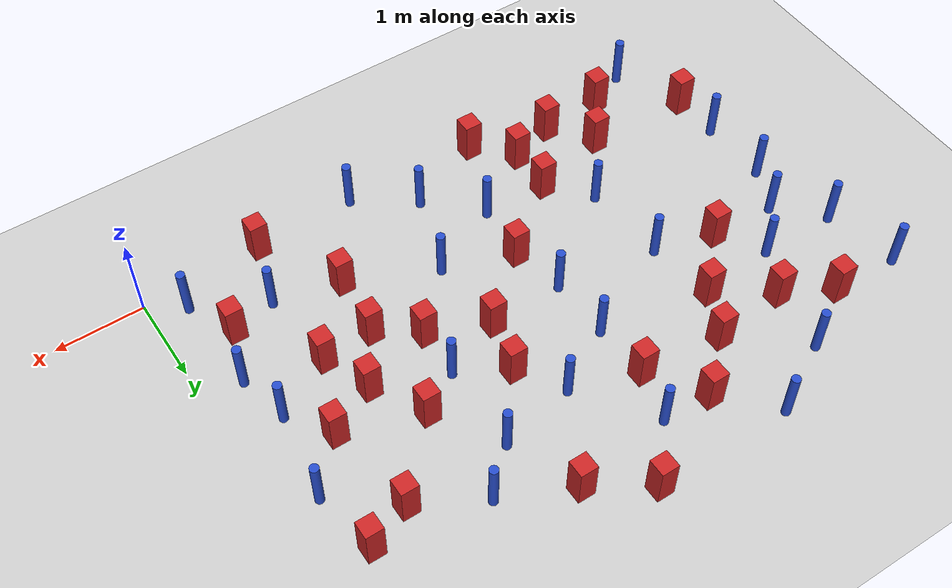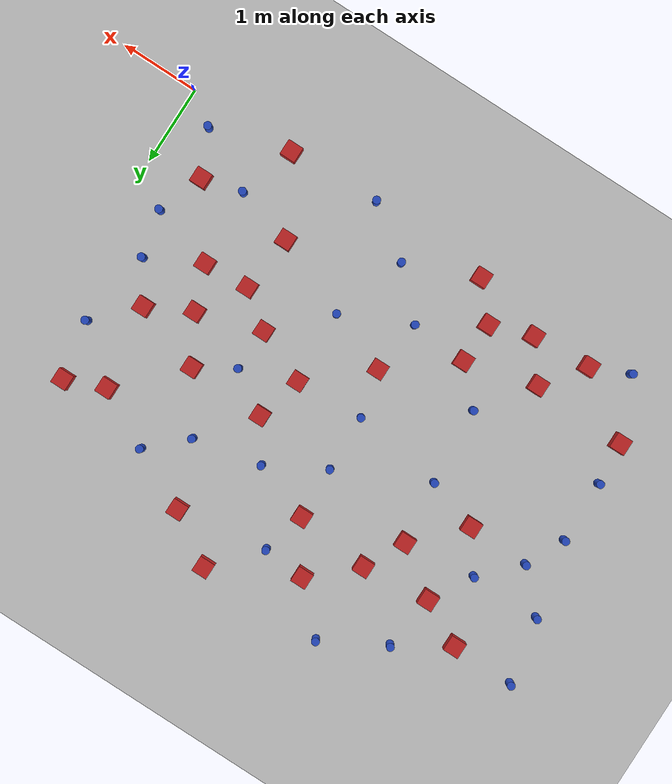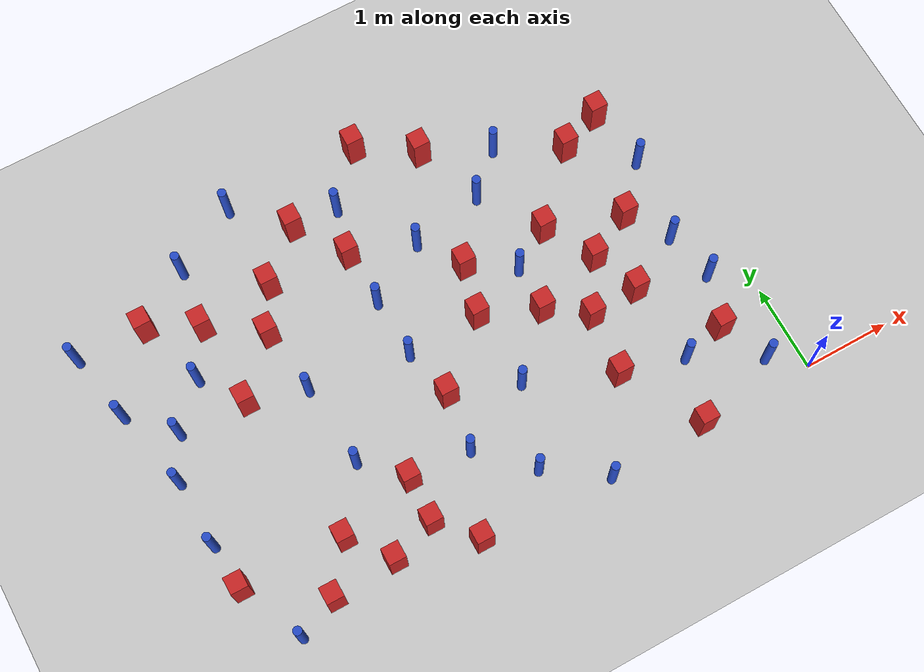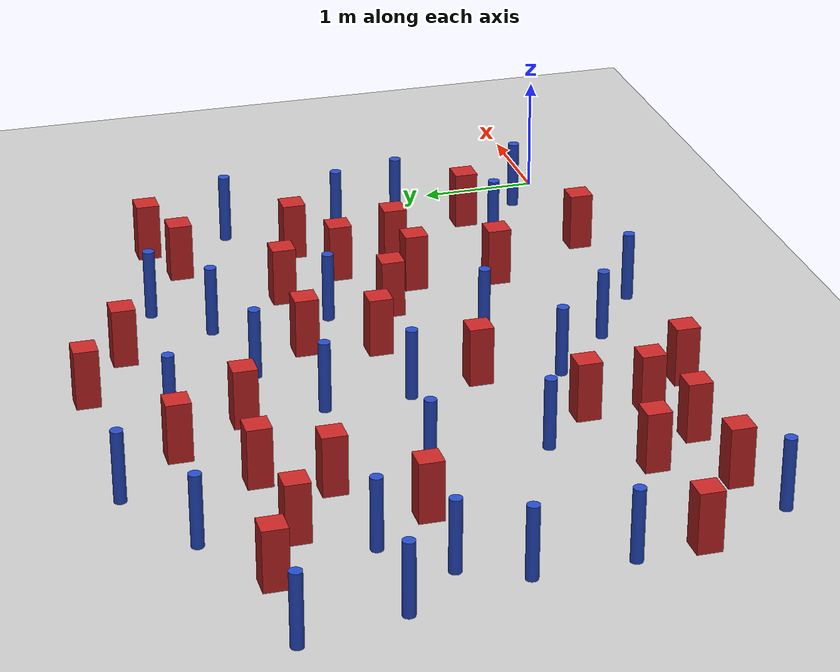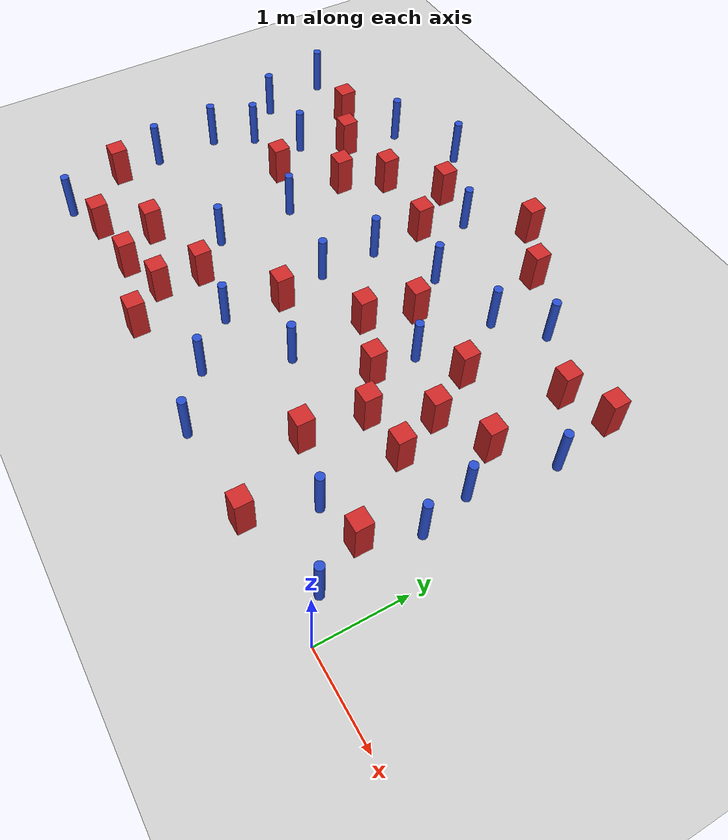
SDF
<sdf version="1.6">
 <world name="default">
  <model name="ground_plane">
   <static>1</static>
   <link name="link">
    <collision name="collision">
     <geometry><plane><normal>0 0 1</normal><size>100 100</size></plane></geometry>
     <surface><friction><ode><mu>100</mu><mu2>50</mu2></ode></friction></surface>
    </collision>
    <visual name="visual">
     <cast_shadows>0</cast_shadows>
     <geometry><plane><normal>0 0 1</normal><size>100 100</size></plane></geometry>
     <material>
      <ambient>1.0 1.0 1.0 1.0</ambient>
      <diffuse>0.8 0.8 0.8 1.0</diffuse>
      <specular>0.01 0.01 0.01 1.000000</specular>
     </material>
    </visual>
   </link>
  </model>
  <model name="square_post_obstacle1">
   <static>true</static>
   <pose>-6.51652858593 0.78683695775 -4.36207812815e-07 3.75137919937e-06 9.77721102514e-07 2.47381364184e-05</pose>
   <link name="link">
    <pose>0 0 0.25 0 -0 0</pose>
    <inertial>
     <mass>100</mass>
     <inertia>
      <ixx>0.166667</ixx>
      <ixy>0</ixy>
      <ixz>0</ixz>
      <iyy>0.166667</iyy>
      <iyz>0</iyz>
      <izz>0.166667</izz>
     </inertia>
    </inertial>
    <collision name="collision"><geometry><box><size>.2 .2 .5</size></box></geometry></collision>
    <visual name="visual">
     <geometry><box><size>.2 .2 .5</size></box></geometry>
     <material>
      <script><name>Gazebo/Red</name><uri>file://media/materials/scripts/gazebo.material</uri></script>
     </material>
    </visual>
   </link>
  </model>
  <model name="pole_obstacle7">
   <static>true</static>
   <pose>-3.71285936024 0.927176487157 -3.09024884793e-07 -7.19054271912e-07 -2.11315075162e-07 -1.93935509281e-07</pose>
   <link name="link">
    <pose>0 0 0.3 0 -0 0</pose>
    <inertial>
     <mass>1</mass>
     <inertia><ixx>0.145833</ixx><ixy>0</ixy><ixz>0</ixz><iyy>0.145833</iyy><iyz>0</iyz><izz>0.125</izz></inertia>
    </inertial>
    <collision name="collision">
     <geometry><cylinder><radius>0.05</radius><length>.6</length></cylinder></geometry>
    </collision>
    <visual name="visual">
     <geometry><cylinder><radius>0.05</radius><length>.6</length></cylinder></geometry>
     <material>
      <script><name>Gazebo/Blue</name><uri>file://media/materials/scripts/gazebo.material</uri></script>
     </material>
    </visual>
   </link>
  </model>
  <model name="square_post_obstacle9">
   <static>true</static>
   <pose>-1.23599823708 1.6640314914 -4.36207812815e-07 3.75137919937e-06 9.77721102514e-07 2.47381364184e-05</pose>
   <link name="link">
    <pose>0 0 0.25 0 -0 0</pose>
    <inertial>
     <mass>100</mass>
     <inertia>
      <ixx>0.166667</ixx>
      <ixy>0</ixy>
      <ixz>0</ixz>
      <iyy>0.166667</iyy>
      <iyz>0</iyz>
      <izz>0.166667</izz>
     </inertia>
    </inertial>
    <collision name="collision"><geometry><box><size>.2 .2 .5</size></box></geometry></collision>
    <visual name="visual">
     <geometry><box><size>.2 .2 .5</size></box></geometry>
     <material>
      <script><name>Gazebo/Red</name><uri>file://media/materials/scripts/gazebo.material</uri></script>
     </material>
    </visual>
   </link>
  </model>
  <model name="square_post_obstacle12">
   <static>true</static>
   <pose>-6.17374142803 3.86425965815 -4.36207812815e-07 3.75137919937e-06 9.77721102514e-07 2.47381364184e-05</pose>
   <link name="link">
    <pose>0 0 0.25 0 -0 0</pose>
    <inertial>
     <mass>100</mass>
     <inertia>
      <ixx>0.166667</ixx>
      <ixy>0</ixy>
      <ixz>0</ixz>
      <iyy>0.166667</iyy>
      <iyz>0</iyz>
      <izz>0.166667</izz>
     </inertia>
    </inertial>
    <collision name="collision"><geometry><box><size>.2 .2 .5</size></box></geometry></collision>
    <visual name="visual">
     <geometry><box><size>.2 .2 .5</size></box></geometry>
     <material>
      <script><name>Gazebo/Red</name><uri>file://media/materials/scripts/gazebo.material</uri></script>
     </material>
    </visual>
   </link>
  </model>
  <model name="square_post_obstacle16">
   <static>true</static>
   <pose>-1.88368987342 0.911929854532 -4.36207812815e-07 3.75137919937e-06 9.77721102514e-07 2.47381364184e-05</pose>
   <link name="link">
    <pose>0 0 0.25 0 -0 0</pose>
    <inertial>
     <mass>100</mass>
     <inertia>
      <ixx>0.166667</ixx>
      <ixy>0</ixy>
      <ixz>0</ixz>
      <iyy>0.166667</iyy>
      <iyz>0</iyz>
      <izz>0.166667</izz>
     </inertia>
    </inertial>
    <collision name="collision"><geometry><box><size>.2 .2 .5</size></box></geometry></collision>
    <visual name="visual">
     <geometry><box><size>.2 .2 .5</size></box></geometry>
     <material>
      <script><name>Gazebo/Red</name><uri>file://media/materials/scripts/gazebo.material</uri></script>
     </material>
    </visual>
   </link>
  </model>
  <model name="square_post_obstacle21">
   <static>true</static>
   <pose>-3.63298602497 1.60475651946 -4.36207812815e-07 3.75137919937e-06 9.77721102514e-07 2.47381364184e-05</pose>
   <link name="link">
    <pose>0 0 0.25 0 -0 0</pose>
    <inertial>
     <mass>100</mass>
     <inertia>
      <ixx>0.166667</ixx>
      <ixy>0</ixy>
      <ixz>0</ixz>
      <iyy>0.166667</iyy>
      <iyz>0</iyz>
      <izz>0.166667</izz>
     </inertia>
    </inertial>
    <collision name="collision"><geometry><box><size>.2 .2 .5</size></box></geometry></collision>
    <visual name="visual">
     <geometry><box><size>.2 .2 .5</size></box></geometry>
     <material>
      <script><name>Gazebo/Red</name><uri>file://media/materials/scripts/gazebo.material</uri></script>
     </material>
    </visual>
   </link>
  </model>
  <model name="pole_obstacle15">
   <static>true</static>
   <pose>-4.91971607165 2.37123961968 -3.09024884793e-07 -7.19054271912e-07 -2.11315075144e-07 -1.93935509269e-07</pose>
   <link name="link">
    <pose>0 0 0.3 0 -0 0</pose>
    <inertial>
     <mass>1</mass>
     <inertia><ixx>0.145833</ixx><ixy>0</ixy><ixz>0</ixz><iyy>0.145833</iyy><iyz>0</iyz><izz>0.125</izz></inertia>
    </inertial>
    <collision name="collision">
     <geometry><cylinder><radius>0.05</radius><length>.6</length></cylinder></geometry>
    </collision>
    <visual name="visual">
     <geometry><cylinder><radius>0.05</radius><length>.6</length></cylinder></geometry>
     <material>
      <script><name>Gazebo/Blue</name><uri>file://media/materials/scripts/gazebo.material</uri></script>
     </material>
    </visual>
   </link>
  </model>
  <model name="square_post_obstacle30">
   <static>true</static>
   <pose>-4.21722687722 4.15787395715 -4.36207812815e-07 3.75137919937e-06 9.77721102514e-07 2.47381364184e-05</pose>
   <link name="link">
    <pose>0 0 0.25 0 -0 0</pose>
    <inertial>
     <mass>100</mass>
     <inertia>
      <ixx>0.166667</ixx>
      <ixy>0</ixy>
      <ixz>0</ixz>
      <iyy>0.166667</iyy>
      <iyz>0</iyz>
      <izz>0.166667</izz>
     </inertia>
    </inertial>
    <collision name="collision"><geometry><box><size>.2 .2 .5</size></box></geometry></collision>
    <visual name="visual">
     <geometry><box><size>.2 .2 .5</size></box></geometry>
     <material>
      <script><name>Gazebo/Red</name><uri>file://media/materials/scripts/gazebo.material</uri></script>
     </material>
    </visual>
   </link>
  </model>
  <model name="pole_obstacle21">
   <static>true</static>
   <pose>-3.09052660164 3.30890729147 -3.09024884793e-07 -7.19054271912e-07 -2.11315075144e-07 -1.93935509271e-07</pose>
   <link name="link">
    <pose>0 0 0.3 0 -0 0</pose>
    <inertial>
     <mass>1</mass>
     <inertia><ixx>0.145833</ixx><ixy>0</ixy><ixz>0</ixz><iyy>0.145833</iyy><iyz>0</iyz><izz>0.125</izz></inertia>
    </inertial>
    <collision name="collision">
     <geometry><cylinder><radius>0.05</radius><length>.6</length></cylinder></geometry>
    </collision>
    <visual name="visual">
     <geometry><cylinder><radius>0.05</radius><length>.6</length></cylinder></geometry>
     <material>
      <script><name>Gazebo/Blue</name><uri>file://media/materials/scripts/gazebo.material</uri></script>
     </material>
    </visual>
   </link>
  </model>
  <model name="square_post_obstacle32">
   <static>true</static>
   <pose>-2.75928012012 2.82162191856 -4.36207812815e-07 3.75137919937e-06 9.77721102514e-07 2.47381364184e-05</pose>
   <link name="link">
    <pose>0 0 0.25 0 -0 0</pose>
    <inertial>
     <mass>100</mass>
     <inertia>
      <ixx>0.166667</ixx>
      <ixy>0</ixy>
      <ixz>0</ixz>
      <iyy>0.166667</iyy>
      <iyz>0</iyz>
      <izz>0.166667</izz>
     </inertia>
    </inertial>
    <collision name="collision"><geometry><box><size>.2 .2 .5</size></box></geometry></collision>
    <visual name="visual">
     <geometry><box><size>.2 .2 .5</size></box></geometry>
     <material>
      <script><name>Gazebo/Red</name><uri>file://media/materials/scripts/gazebo.material</uri></script>
     </material>
    </visual>
   </link>
  </model>
  <model name="square_post_obstacle34">
   <static>true</static>
   <pose>-0.896329567246 2.48800933883 -4.36207812815e-07 3.75137919937e-06 9.77721102514e-07 2.47381364184e-05</pose>
   <link name="link">
    <pose>0 0 0.25 0 -0 0</pose>
    <inertial>
     <mass>100</mass>
     <inertia>
      <ixx>0.166667</ixx>
      <ixy>0</ixy>
      <ixz>0</ixz>
      <iyy>0.166667</iyy>
      <iyz>0</iyz>
      <izz>0.166667</izz>
     </inertia>
    </inertial>
    <collision name="collision"><geometry><box><size>.2 .2 .5</size></box></geometry></collision>
    <visual name="visual">
     <geometry><box><size>.2 .2 .5</size></box></geometry>
     <material>
      <script><name>Gazebo/Red</name><uri>file://media/materials/scripts/gazebo.material</uri></script>
     </material>
    </visual>
   </link>
  </model>
  <model name="pole_obstacle39">
   <static>true</static>
   <pose>-2.86524490861 1.32082966314 -3.09024884793e-07 -7.19054271912e-07 -2.11315075122e-07 -1.93935509259e-07</pose>
   <link name="link">
    <pose>0 0 0.3 0 -0 0</pose>
    <inertial>
     <mass>1</mass>
     <inertia><ixx>0.145833</ixx><ixy>0</ixy><ixz>0</ixz><iyy>0.145833</iyy><iyz>0</iyz><izz>0.125</izz></inertia>
    </inertial>
    <collision name="collision">
     <geometry><cylinder><radius>0.05</radius><length>.6</length></cylinder></geometry>
    </collision>
    <visual name="visual">
     <geometry><cylinder><radius>0.05</radius><length>.6</length></cylinder></geometry>
     <material>
      <script><name>Gazebo/Blue</name><uri>file://media/materials/scripts/gazebo.material</uri></script>
     </material>
    </visual>
   </link>
  </model>
  <model name="pole_obstacle40">
   <static>true</static>
   <pose>-0.38835133906 0.286060302356 -3.09024884793e-07 -7.19054271912e-07 -2.11315075139e-07 -1.93935509268e-07</pose>
   <link name="link">
    <pose>0 0 0.3 0 -0 0</pose>
    <inertial>
     <mass>1</mass>
     <inertia><ixx>0.145833</ixx><ixy>0</ixy><ixz>0</ixz><iyy>0.145833</iyy><iyz>0</iyz><izz>0.125</izz></inertia>
    </inertial>
    <collision name="collision">
     <geometry><cylinder><radius>0.05</radius><length>.6</length></cylinder></geometry>
    </collision>
    <visual name="visual">
     <geometry><cylinder><radius>0.05</radius><length>.6</length></cylinder></geometry>
     <material>
      <script><name>Gazebo/Blue</name><uri>file://media/materials/scripts/gazebo.material</uri></script>
     </material>
    </visual>
   </link>
  </model>
  <model name="square_post_obstacle40">
   <static>true</static>
   <pose>-5.01593971081 3.15319301197 -4.36207812815e-07 3.75137919937e-06 9.77721102514e-07 2.47381364184e-05</pose>
   <link name="link">
    <pose>0 0 0.25 0 -0 0</pose>
    <inertial>
     <mass>100</mass>
     <inertia>
      <ixx>0.166667</ixx>
      <ixy>0</ixy>
      <ixz>0</ixz>
      <iyy>0.166667</iyy>
      <iyz>0</iyz>
      <izz>0.166667</izz>
     </inertia>
    </inertial>
    <collision name="collision"><geometry><box><size>.2 .2 .5</size></box></geometry></collision>
    <visual name="visual">
     <geometry><box><size>.2 .2 .5</size></box></geometry>
     <material>
      <script><name>Gazebo/Red</name><uri>file://media/materials/scripts/gazebo.material</uri></script>
     </material>
    </visual>
   </link>
  </model>
  <model name="square_post_obstacle41">
   <static>true</static>
   <pose>-1.37461915622 -0.00380150282705 -4.36207812815e-07 3.75137919937e-06 9.77721102514e-07 2.47381364184e-05</pose>
   <link name="link">
    <pose>0 0 0.25 0 -0 0</pose>
    <inertial>
     <mass>100</mass>
     <inertia>
      <ixx>0.166667</ixx>
      <ixy>0</ixy>
      <ixz>0</ixz>
      <iyy>0.166667</iyy>
      <iyz>0</iyz>
      <izz>0.166667</izz>
     </inertia>
    </inertial>
    <collision name="collision"><geometry><box><size>.2 .2 .5</size></box></geometry></collision>
    <visual name="visual">
     <geometry><box><size>.2 .2 .5</size></box></geometry>
     <material>
      <script><name>Gazebo/Red</name><uri>file://media/materials/scripts/gazebo.material</uri></script>
     </material>
    </visual>
   </link>
  </model>
  <model name="square_post_obstacle44">
   <static>true</static>
   <pose>-2.54183168225 4.28383851326 -4.36207812815e-07 3.75137919937e-06 9.77721102514e-07 2.47381364184e-05</pose>
   <link name="link">
    <pose>0 0 0.25 0 -0 0</pose>
    <inertial>
     <mass>100</mass>
     <inertia>
      <ixx>0.166667</ixx>
      <ixy>0</ixy>
      <ixz>0</ixz>
      <iyy>0.166667</iyy>
      <iyz>0</iyz>
      <izz>0.166667</izz>
     </inertia>
    </inertial>
    <collision name="collision"><geometry><box><size>.2 .2 .5</size></box></geometry></collision>
    <visual name="visual">
     <geometry><box><size>.2 .2 .5</size></box></geometry>
     <material>
      <script><name>Gazebo/Red</name><uri>file://media/materials/scripts/gazebo.material</uri></script>
     </material>
    </visual>
   </link>
  </model>
  <model name="square_post_obstacle47">
   <static>true</static>
   <pose>-4.42842637429 0.972238981989 -4.36207812815e-07 3.75137919937e-06 9.77721102514e-07 2.47381364184e-05</pose>
   <link name="link">
    <pose>0 0 0.25 0 -0 0</pose>
    <inertial>
     <mass>100</mass>
     <inertia>
      <ixx>0.166667</ixx>
      <ixy>0</ixy>
      <ixz>0</ixz>
      <iyy>0.166667</iyy>
      <iyz>0</iyz>
      <izz>0.166667</izz>
     </inertia>
    </inertial>
    <collision name="collision"><geometry><box><size>.2 .2 .5</size></box></geometry></collision>
    <visual name="visual">
     <geometry><box><size>.2 .2 .5</size></box></geometry>
     <material>
      <script><name>Gazebo/Red</name><uri>file://media/materials/scripts/gazebo.material</uri></script>
     </material>
    </visual>
   </link>
  </model>
  <model name="pole_obstacle49">
   <static>true</static>
   <pose>-2.23323763069 3.48701591992 -3.09024884793e-07 -7.19054271912e-07 -2.11315075144e-07 -1.93935509271e-07</pose>
   <link name="link">
    <pose>0 0 0.3 0 -0 0</pose>
    <inertial>
     <mass>1</mass>
     <inertia><ixx>0.145833</ixx><ixy>0</ixy><ixz>0</ixz><iyy>0.145833</iyy><iyz>0</iyz><izz>0.125</izz></inertia>
    </inertial>
    <collision name="collision">
     <geometry><cylinder><radius>0.05</radius><length>.6</length></cylinder></geometry>
    </collision>
    <visual name="visual">
     <geometry><cylinder><radius>0.05</radius><length>.6</length></cylinder></geometry>
     <material>
      <script><name>Gazebo/Blue</name><uri>file://media/materials/scripts/gazebo.material</uri></script>
     </material>
    </visual>
   </link>
  </model>
  <model name="square_post_obstacle49">
   <static>true</static>
   <pose>-2.91132781412 2.23833069489 -4.36207812815e-07 3.75137919937e-06 9.77721102514e-07 2.47381364184e-05</pose>
   <link name="link">
    <pose>0 0 0.25 0 -0 0</pose>
    <inertial>
     <mass>100</mass>
     <inertia>
      <ixx>0.166667</ixx>
      <ixy>0</ixy>
      <ixz>0</ixz>
      <iyy>0.166667</iyy>
      <iyz>0</iyz>
      <izz>0.166667</izz>
     </inertia>
    </inertial>
    <collision name="collision"><geometry><box><size>.2 .2 .5</size></box></geometry></collision>
    <visual name="visual">
     <geometry><box><size>.2 .2 .5</size></box></geometry>
     <material>
      <script><name>Gazebo/Red</name><uri>file://media/materials/scripts/gazebo.material</uri></script>
     </material>
    </visual>
   </link>
  </model>
  <model name="square_post_obstacle52">
   <static>true</static>
   <pose>-0.647665237439 0.840282844135 -4.36207812815e-07 3.75137919937e-06 9.77721102514e-07 2.47381364184e-05</pose>
   <link name="link">
    <pose>0 0 0.25 0 -0 0</pose>
    <inertial>
     <mass>100</mass>
     <inertia>
      <ixx>0.166667</ixx>
      <ixy>0</ixy>
      <ixz>0</ixz>
      <iyy>0.166667</iyy>
      <iyz>0</iyz>
      <izz>0.166667</izz>
     </inertia>
    </inertial>
    <collision name="collision"><geometry><box><size>.2 .2 .5</size></box></geometry></collision>
    <visual name="visual">
     <geometry><box><size>.2 .2 .5</size></box></geometry>
     <material>
      <script><name>Gazebo/Red</name><uri>file://media/materials/scripts/gazebo.material</uri></script>
     </material>
    </visual>
   </link>
  </model>
  <model name="square_post_obstacle55">
   <static>true</static>
   <pose>-5.57253389197 2.57225975237 -4.36207812815e-07 3.75137919937e-06 9.77721102514e-07 2.47381364184e-05</pose>
   <link name="link">
    <pose>0 0 0.25 0 -0 0</pose>
    <inertial>
     <mass>100</mass>
     <inertia>
      <ixx>0.166667</ixx>
      <ixy>0</ixy>
      <ixz>0</ixz>
      <iyy>0.166667</iyy>
      <iyz>0</iyz>
      <izz>0.166667</izz>
     </inertia>
    </inertial>
    <collision name="collision"><geometry><box><size>.2 .2 .5</size></box></geometry></collision>
    <visual name="visual">
     <geometry><box><size>.2 .2 .5</size></box></geometry>
     <material>
      <script><name>Gazebo/Red</name><uri>file://media/materials/scripts/gazebo.material</uri></script>
     </material>
    </visual>
   </link>
  </model>
  <model name="pole_obstacle52">
   <static>true</static>
   <pose>-4.75664091016 4.69803947986 -3.09024884793e-07 -7.19054271911e-07 -2.1131507516e-07 -1.93935509277e-07</pose>
   <link name="link">
    <pose>0 0 0.3 0 -0 0</pose>
    <inertial>
     <mass>1</mass>
     <inertia><ixx>0.145833</ixx><ixy>0</ixy><ixz>0</ixz><iyy>0.145833</iyy><iyz>0</iyz><izz>0.125</izz></inertia>
    </inertial>
    <collision name="collision">
     <geometry><cylinder><radius>0.05</radius><length>.6</length></cylinder></geometry>
    </collision>
    <visual name="visual">
     <geometry><cylinder><radius>0.05</radius><length>.6</length></cylinder></geometry>
     <material>
      <script><name>Gazebo/Blue</name><uri>file://media/materials/scripts/gazebo.material</uri></script>
     </material>
    </visual>
   </link>
  </model>
  <model name="square_post_obstacle56">
   <static>true</static>
   <pose>-4.07058761771 0.0271621076609 -4.36207812815e-07 3.75137919937e-06 9.77721102514e-07 2.47381364184e-05</pose>
   <link name="link">
    <pose>0 0 0.25 0 -0 0</pose>
    <inertial>
     <mass>100</mass>
     <inertia>
      <ixx>0.166667</ixx>
      <ixy>0</ixy>
      <ixz>0</ixz>
      <iyy>0.166667</iyy>
      <iyz>0</iyz>
      <izz>0.166667</izz>
     </inertia>
    </inertial>
    <collision name="collision"><geometry><box><size>.2 .2 .5</size></box></geometry></collision>
    <visual name="visual">
     <geometry><box><size>.2 .2 .5</size></box></geometry>
     <material>
      <script><name>Gazebo/Red</name><uri>file://media/materials/scripts/gazebo.material</uri></script>
     </material>
    </visual>
   </link>
  </model>
  <model name="square_post_obstacle57">
   <static>true</static>
   <pose>-4.96932298775 0.272806744723 -4.36207812815e-07 3.75137919937e-06 9.77721102514e-07 2.47381364184e-05</pose>
   <link name="link">
    <pose>0 0 0.25 0 -0 0</pose>
    <inertial>
     <mass>100</mass>
     <inertia>
      <ixx>0.166667</ixx>
      <ixy>0</ixy>
      <ixz>0</ixz>
      <iyy>0.166667</iyy>
      <iyz>0</iyz>
      <izz>0.166667</izz>
     </inertia>
    </inertial>
    <collision name="collision"><geometry><box><size>.2 .2 .5</size></box></geometry></collision>
    <visual name="visual">
     <geometry><box><size>.2 .2 .5</size></box></geometry>
     <material>
      <script><name>Gazebo/Red</name><uri>file://media/materials/scripts/gazebo.material</uri></script>
     </material>
    </visual>
   </link>
  </model>
  <model name="square_post_obstacle63">
   <static>true</static>
   <pose>-1.77071803895 2.78188831188 -4.36207812815e-07 3.75137919937e-06 9.77721102514e-07 2.47381364184e-05</pose>
   <link name="link">
    <pose>0 0 0.25 0 -0 0</pose>
    <inertial>
     <mass>100</mass>
     <inertia>
      <ixx>0.166667</ixx>
      <ixy>0</ixy>
      <ixz>0</ixz>
      <iyy>0.166667</iyy>
      <iyz>0</iyz>
      <izz>0.166667</izz>
     </inertia>
    </inertial>
    <collision name="collision"><geometry><box><size>.2 .2 .5</size></box></geometry></collision>
    <visual name="visual">
     <geometry><box><size>.2 .2 .5</size></box></geometry>
     <material>
      <script><name>Gazebo/Red</name><uri>file://media/materials/scripts/gazebo.material</uri></script>
     </material>
    </visual>
   </link>
  </model>
  <model name="square_post_obstacle69">
   <static>true</static>
   <pose>-1.80871169776 1.62902355933 -4.36207812815e-07 3.75137919937e-06 9.77721102514e-07 2.47381364184e-05</pose>
   <link name="link">
    <pose>0 0 0.25 0 -0 0</pose>
    <inertial>
     <mass>100</mass>
     <inertia>
      <ixx>0.166667</ixx>
      <ixy>0</ixy>
      <ixz>0</ixz>
      <iyy>0.166667</iyy>
      <iyz>0</iyz>
      <izz>0.166667</izz>
     </inertia>
    </inertial>
    <collision name="collision"><geometry><box><size>.2 .2 .5</size></box></geometry></collision>
    <visual name="visual">
     <geometry><box><size>.2 .2 .5</size></box></geometry>
     <material>
      <script><name>Gazebo/Red</name><uri>file://media/materials/scripts/gazebo.material</uri></script>
     </material>
    </visual>
   </link>
  </model>
  <model name="pole_obstacle67">
   <static>true</static>
   <pose>-3.79748144037 2.90827298728 -3.09024884793e-07 -7.19054271912e-07 -2.11315075128e-07 -1.93935509262e-07</pose>
   <link name="link">
    <pose>0 0 0.3 0 -0 0</pose>
    <inertial>
     <mass>1</mass>
     <inertia><ixx>0.145833</ixx><ixy>0</ixy><ixz>0</ixz><iyy>0.145833</iyy><iyz>0</iyz><izz>0.125</izz></inertia>
    </inertial>
    <collision name="collision">
     <geometry><cylinder><radius>0.05</radius><length>.6</length></cylinder></geometry>
    </collision>
    <visual name="visual">
     <geometry><cylinder><radius>0.05</radius><length>.6</length></cylinder></geometry>
     <material>
      <script><name>Gazebo/Blue</name><uri>file://media/materials/scripts/gazebo.material</uri></script>
     </material>
    </visual>
   </link>
  </model>
  <model name="pole_obstacle85">
   <static>true</static>
   <pose>-0.437793547578 1.42320764081 -3.09024884793e-07 -7.19054271912e-07 -2.11315075135e-07 -1.93935509265e-07</pose>
   <link name="link">
    <pose>0 0 0.3 0 -0 0</pose>
    <inertial>
     <mass>1</mass>
     <inertia><ixx>0.145833</ixx><ixy>0</ixy><ixz>0</ixz><iyy>0.145833</iyy><iyz>0</iyz><izz>0.125</izz></inertia>
    </inertial>
    <collision name="collision">
     <geometry><cylinder><radius>0.05</radius><length>.6</length></cylinder></geometry>
    </collision>
    <visual name="visual">
     <geometry><cylinder><radius>0.05</radius><length>.6</length></cylinder></geometry>
     <material>
      <script><name>Gazebo/Blue</name><uri>file://media/materials/scripts/gazebo.material</uri></script>
     </material>
    </visual>
   </link>
  </model>
  <model name="square_post_obstacle89">
   <static>true</static>
   <pose>-4.75672494575 3.66010180028 -4.36207812815e-07 3.75137919937e-06 9.77721102514e-07 2.47381364184e-05</pose>
   <link name="link">
    <pose>0 0 0.25 0 -0 0</pose>
    <inertial>
     <mass>100</mass>
     <inertia>
      <ixx>0.166667</ixx>
      <ixy>0</ixy>
      <ixz>0</ixz>
      <iyy>0.166667</iyy>
      <iyz>0</iyz>
      <izz>0.166667</izz>
     </inertia>
    </inertial>
    <collision name="collision"><geometry><box><size>.2 .2 .5</size></box></geometry></collision>
    <visual name="visual">
     <geometry><box><size>.2 .2 .5</size></box></geometry>
     <material>
      <script><name>Gazebo/Red</name><uri>file://media/materials/scripts/gazebo.material</uri></script>
     </material>
    </visual>
   </link>
  </model>
  <model name="pole_obstacle107">
   <static>true</static>
   <pose>-3.1771988162 0.394109932214 -3.09024884793e-07 -7.19054271912e-07 -2.11315075159e-07 -1.93935509278e-07</pose>
   <link name="link">
    <pose>0 0 0.3 0 -0 0</pose>
    <inertial>
     <mass>1</mass>
     <inertia><ixx>0.145833</ixx><ixy>0</ixy><ixz>0</ixz><iyy>0.145833</iyy><iyz>0</iyz><izz>0.125</izz></inertia>
    </inertial>
    <collision name="collision">
     <geometry><cylinder><radius>0.05</radius><length>.6</length></cylinder></geometry>
    </collision>
    <visual name="visual">
     <geometry><cylinder><radius>0.05</radius><length>.6</length></cylinder></geometry>
     <material>
      <script><name>Gazebo/Blue</name><uri>file://media/materials/scripts/gazebo.material</uri></script>
     </material>
    </visual>
   </link>
  </model>
  <model name="pole_obstacle109">
   <static>true</static>
   <pose>-1.78327139134 3.91896941863 -3.09024884793e-07 -7.19054271912e-07 -2.11315075132e-07 -1.93935509263e-07</pose>
   <link name="link">
    <pose>0 0 0.3 0 -0 0</pose>
    <inertial>
     <mass>1</mass>
     <inertia><ixx>0.145833</ixx><ixy>0</ixy><ixz>0</ixz><iyy>0.145833</iyy><iyz>0</iyz><izz>0.125</izz></inertia>
    </inertial>
    <collision name="collision">
     <geometry><cylinder><radius>0.05</radius><length>.6</length></cylinder></geometry>
    </collision>
    <visual name="visual">
     <geometry><cylinder><radius>0.05</radius><length>.6</length></cylinder></geometry>
     <material>
      <script><name>Gazebo/Blue</name><uri>file://media/materials/scripts/gazebo.material</uri></script>
     </material>
    </visual>
   </link>
  </model>
  <model name="pole_obstacle113">
   <static>true</static>
   <pose>-0.570495540968 2.00891098536 -3.09024884793e-07 -7.19054271912e-07 -2.11315075138e-07 -1.93935509266e-07</pose>
   <link name="link">
    <pose>0 0 0.3 0 -0 0</pose>
    <inertial>
     <mass>1</mass>
     <inertia><ixx>0.145833</ixx><ixy>0</ixy><ixz>0</ixz><iyy>0.145833</iyy><iyz>0</iyz><izz>0.125</izz></inertia>
    </inertial>
    <collision name="collision">
     <geometry><cylinder><radius>0.05</radius><length>.6</length></cylinder></geometry>
    </collision>
    <visual name="visual">
     <geometry><cylinder><radius>0.05</radius><length>.6</length></cylinder></geometry>
     <material>
      <script><name>Gazebo/Blue</name><uri>file://media/materials/scripts/gazebo.material</uri></script>
     </material>
    </visual>
   </link>
  </model>
  <model name="square_post_obstacle107">
   <static>true</static>
   <pose>-4.44295683999 0.450522698105 -4.36207812815e-07 3.75137919937e-06 9.77721102514e-07 2.47381364184e-05</pose>
   <link name="link">
    <pose>0 0 0.25 0 -0 0</pose>
    <inertial>
     <mass>100</mass>
     <inertia>
      <ixx>0.166667</ixx>
      <ixy>0</ixy>
      <ixz>0</ixz>
      <iyy>0.166667</iyy>
      <iyz>0</iyz>
      <izz>0.166667</izz>
     </inertia>
    </inertial>
    <collision name="collision"><geometry><box><size>.2 .2 .5</size></box></geometry></collision>
    <visual name="visual">
     <geometry><box><size>.2 .2 .5</size></box></geometry>
     <material>
      <script><name>Gazebo/Red</name><uri>file://media/materials/scripts/gazebo.material</uri></script>
     </material>
    </visual>
   </link>
  </model>
  <model name="pole_obstacle120">
   <static>true</static>
   <pose>-5.52987267036 4.27365521912 -3.09024884793e-07 -7.19054271911e-07 -2.1131507516e-07 -1.93935509277e-07</pose>
   <link name="link">
    <pose>0 0 0.3 0 -0 0</pose>
    <inertial>
     <mass>1</mass>
     <inertia><ixx>0.145833</ixx><ixy>0</ixy><ixz>0</ixz><iyy>0.145833</iyy><iyz>0</iyz><izz>0.125</izz></inertia>
    </inertial>
    <collision name="collision">
     <geometry><cylinder><radius>0.05</radius><length>.6</length></cylinder></geometry>
    </collision>
    <visual name="visual">
     <geometry><cylinder><radius>0.05</radius><length>.6</length></cylinder></geometry>
     <material>
      <script><name>Gazebo/Blue</name><uri>file://media/materials/scripts/gazebo.material</uri></script>
     </material>
    </visual>
   </link>
  </model>
  <model name="square_post_obstacle112">
   <static>true</static>
   <pose>-3.17409096237 4.68887343041 -4.36207812815e-07 3.75137919937e-06 9.77721102514e-07 2.47381364184e-05</pose>
   <link name="link">
    <pose>0 0 0.25 0 -0 0</pose>
    <inertial>
     <mass>100</mass>
     <inertia>
      <ixx>0.166667</ixx>
      <ixy>0</ixy>
      <ixz>0</ixz>
      <iyy>0.166667</iyy>
      <iyz>0</iyz>
      <izz>0.166667</izz>
     </inertia>
    </inertial>
    <collision name="collision"><geometry><box><size>.2 .2 .5</size></box></geometry></collision>
    <visual name="visual">
     <geometry><box><size>.2 .2 .5</size></box></geometry>
     <material>
      <script><name>Gazebo/Red</name><uri>file://media/materials/scripts/gazebo.material</uri></script>
     </material>
    </visual>
   </link>
  </model>
  <model name="pole_obstacle127">
   <static>true</static>
   <pose>-0.421134202731 2.99355188518 -3.09024884793e-07 -7.19054271912e-07 -2.11315075129e-07 -1.93935509263e-07</pose>
   <link name="link">
    <pose>0 0 0.3 0 -0 0</pose>
    <inertial>
     <mass>1</mass>
     <inertia><ixx>0.145833</ixx><ixy>0</ixy><ixz>0</ixz><iyy>0.145833</iyy><iyz>0</iyz><izz>0.125</izz></inertia>
    </inertial>
    <collision name="collision">
     <geometry><cylinder><radius>0.05</radius><length>.6</length></cylinder></geometry>
    </collision>
    <visual name="visual">
     <geometry><cylinder><radius>0.05</radius><length>.6</length></cylinder></geometry>
     <material>
      <script><name>Gazebo/Blue</name><uri>file://media/materials/scripts/gazebo.material</uri></script>
     </material>
    </visual>
   </link>
  </model>
  <model name="pole_obstacle130">
   <static>true</static>
   <pose>-3.6804836403 4.11524024693 -3.09024884793e-07 -7.19054271912e-07 -2.11315075134e-07 -1.93935509266e-07</pose>
   <link name="link">
    <pose>0 0 0.3 0 -0 0</pose>
    <inertial>
     <mass>1</mass>
     <inertia><ixx>0.145833</ixx><ixy>0</ixy><ixz>0</ixz><iyy>0.145833</iyy><iyz>0</iyz><izz>0.125</izz></inertia>
    </inertial>
    <collision name="collision">
     <geometry><cylinder><radius>0.05</radius><length>.6</length></cylinder></geometry>
    </collision>
    <visual name="visual">
     <geometry><cylinder><radius>0.05</radius><length>.6</length></cylinder></geometry>
     <material>
      <script><name>Gazebo/Blue</name><uri>file://media/materials/scripts/gazebo.material</uri></script>
     </material>
    </visual>
   </link>
  </model>
  <model name="square_post_obstacle123">
   <static>true</static>
   <pose>-5.32745343835 0.737685101869 -4.36207812815e-07 3.75137919937e-06 9.77721102514e-07 2.47381364184e-05</pose>
   <link name="link">
    <pose>0 0 0.25 0 -0 0</pose>
    <inertial>
     <mass>100</mass>
     <inertia>
      <ixx>0.166667</ixx>
      <ixy>0</ixy>
      <ixz>0</ixz>
      <iyy>0.166667</iyy>
      <iyz>0</iyz>
      <izz>0.166667</izz>
     </inertia>
    </inertial>
    <collision name="collision"><geometry><box><size>.2 .2 .5</size></box></geometry></collision>
    <visual name="visual">
     <geometry><box><size>.2 .2 .5</size></box></geometry>
     <material>
      <script><name>Gazebo/Red</name><uri>file://media/materials/scripts/gazebo.material</uri></script>
     </material>
    </visual>
   </link>
  </model>
  <model name="pole_obstacle146">
   <static>true</static>
   <pose>-6.18194687819 0.0199158267827 -3.09024884793e-07 -7.19054271912e-07 -2.11315075117e-07 -1.93935509257e-07</pose>
   <link name="link">
    <pose>0 0 0.3 0 -0 0</pose>
    <inertial>
     <mass>1</mass>
     <inertia><ixx>0.145833</ixx><ixy>0</ixy><ixz>0</ixz><iyy>0.145833</iyy><iyz>0</iyz><izz>0.125</izz></inertia>
    </inertial>
    <collision name="collision">
     <geometry><cylinder><radius>0.05</radius><length>.6</length></cylinder></geometry>
    </collision>
    <visual name="visual">
     <geometry><cylinder><radius>0.05</radius><length>.6</length></cylinder></geometry>
     <material>
      <script><name>Gazebo/Blue</name><uri>file://media/materials/scripts/gazebo.material</uri></script>
     </material>
    </visual>
   </link>
  </model>
  <model name="pole_obstacle150">
   <static>true</static>
   <pose>-4.84331059447 1.40249435492 -3.09024884793e-07 -7.19054271912e-07 -2.11315075124e-07 -1.93935509261e-07</pose>
   <link name="link">
    <pose>0 0 0.3 0 -0 0</pose>
    <inertial>
     <mass>1</mass>
     <inertia><ixx>0.145833</ixx><ixy>0</ixy><ixz>0</ixz><iyy>0.145833</iyy><iyz>0</iyz><izz>0.125</izz></inertia>
    </inertial>
    <collision name="collision">
     <geometry><cylinder><radius>0.05</radius><length>.6</length></cylinder></geometry>
    </collision>
    <visual name="visual">
     <geometry><cylinder><radius>0.05</radius><length>.6</length></cylinder></geometry>
     <material>
      <script><name>Gazebo/Blue</name><uri>file://media/materials/scripts/gazebo.material</uri></script>
     </material>
    </visual>
   </link>
  </model>
  <model name="pole_obstacle161">
   <static>true</static>
   <pose>-6.97219857685 3.88494868465 -3.09024884793e-07 -7.19054271912e-07 -2.11315075144e-07 -1.93935509269e-07</pose>
   <link name="link">
    <pose>0 0 0.3 0 -0 0</pose>
    <inertial>
     <mass>1</mass>
     <inertia><ixx>0.145833</ixx><ixy>0</ixy><ixz>0</ixz><iyy>0.145833</iyy><iyz>0</iyz><izz>0.125</izz></inertia>
    </inertial>
    <collision name="collision">
     <geometry><cylinder><radius>0.05</radius><length>.6</length></cylinder></geometry>
    </collision>
    <visual name="visual">
     <geometry><cylinder><radius>0.05</radius><length>.6</length></cylinder></geometry>
     <material>
      <script><name>Gazebo/Blue</name><uri>file://media/materials/scripts/gazebo.material</uri></script>
     </material>
    </visual>
   </link>
  </model>
  <model name="pole_obstacle176">
   <static>true</static>
   <pose>-3.7742158533 2.19646643421 -3.09024884793e-07 -7.19054271912e-07 -2.11315075128e-07 -1.93935509262e-07</pose>
   <link name="link">
    <pose>0 0 0.3 0 -0 0</pose>
    <inertial>
     <mass>1</mass>
     <inertia><ixx>0.145833</ixx><ixy>0</ixy><ixz>0</ixz><iyy>0.145833</iyy><iyz>0</iyz><izz>0.125</izz></inertia>
    </inertial>
    <collision name="collision">
     <geometry><cylinder><radius>0.05</radius><length>.6</length></cylinder></geometry>
    </collision>
    <visual name="visual">
     <geometry><cylinder><radius>0.05</radius><length>.6</length></cylinder></geometry>
     <material>
      <script><name>Gazebo/Blue</name><uri>file://media/materials/scripts/gazebo.material</uri></script>
     </material>
    </visual>
   </link>
  </model>
  <model name="pole_obstacle182">
   <static>true</static>
   <pose>-2.53464500995 -0.057944081382 -3.09024884793e-07 -7.19054271912e-07 -2.11315075117e-07 -1.93935509258e-07</pose>
   <link name="link">
    <pose>0 0 0.3 0 -0 0</pose>
    <inertial>
     <mass>1</mass>
     <inertia><ixx>0.145833</ixx><ixy>0</ixy><ixz>0</ixz><iyy>0.145833</iyy><iyz>0</iyz><izz>0.125</izz></inertia>
    </inertial>
    <collision name="collision">
     <geometry><cylinder><radius>0.05</radius><length>.6</length></cylinder></geometry>
    </collision>
    <visual name="visual">
     <geometry><cylinder><radius>0.05</radius><length>.6</length></cylinder></geometry>
     <material>
      <script><name>Gazebo/Blue</name><uri>file://media/materials/scripts/gazebo.material</uri></script>
     </material>
    </visual>
   </link>
  </model>
  <model name="square_post_obstacle176">
   <static>true</static>
   <pose>-1.44289264238 2.20884489843 -4.36207812815e-07 3.75137919937e-06 9.77721102514e-07 2.47381364184e-05</pose>
   <link name="link">
    <pose>0 0 0.25 0 -0 0</pose>
    <inertial>
     <mass>100</mass>
     <inertia>
      <ixx>0.166667</ixx>
      <ixy>0</ixy>
      <ixz>0</ixz>
      <iyy>0.166667</iyy>
      <iyz>0</iyz>
      <izz>0.166667</izz>
     </inertia>
    </inertial>
    <collision name="collision"><geometry><box><size>.2 .2 .5</size></box></geometry></collision>
    <visual name="visual">
     <geometry><box><size>.2 .2 .5</size></box></geometry>
     <material>
      <script><name>Gazebo/Red</name><uri>file://media/materials/scripts/gazebo.material</uri></script>
     </material>
    </visual>
   </link>
  </model>
  <model name="square_post_obstacle177">
   <static>true</static>
   <pose>-2.25173756013 1.95717667804 -4.36207812815e-07 3.75137919937e-06 9.77721102514e-07 2.47381364184e-05</pose>
   <link name="link">
    <pose>0 0 0.25 0 -0 0</pose>
    <inertial>
     <mass>100</mass>
     <inertia>
      <ixx>0.166667</ixx>
      <ixy>0</ixy>
      <ixz>0</ixz>
      <iyy>0.166667</iyy>
      <iyz>0</iyz>
      <izz>0.166667</izz>
     </inertia>
    </inertial>
    <collision name="collision"><geometry><box><size>.2 .2 .5</size></box></geometry></collision>
    <visual name="visual">
     <geometry><box><size>.2 .2 .5</size></box></geometry>
     <material>
      <script><name>Gazebo/Red</name><uri>file://media/materials/scripts/gazebo.material</uri></script>
     </material>
    </visual>
   </link>
  </model>
  <model name="square_post_obstacle181">
   <static>true</static>
   <pose>-3.82486692387 3.56178216279 -4.36207812815e-07 3.75137919937e-06 9.77721102514e-07 2.47381364184e-05</pose>
   <link name="link">
    <pose>0 0 0.25 0 -0 0</pose>
    <inertial>
     <mass>100</mass>
     <inertia>
      <ixx>0.166667</ixx>
      <ixy>0</ixy>
      <ixz>0</ixz>
      <iyy>0.166667</iyy>
      <iyz>0</iyz>
      <izz>0.166667</izz>
     </inertia>
    </inertial>
    <collision name="collision"><geometry><box><size>.2 .2 .5</size></box></geometry></collision>
    <visual name="visual">
     <geometry><box><size>.2 .2 .5</size></box></geometry>
     <material>
      <script><name>Gazebo/Red</name><uri>file://media/materials/scripts/gazebo.material</uri></script>
     </material>
    </visual>
   </link>
  </model>
  <model name="square_post_obstacle188">
   <static>true</static>
   <pose>-1.05855391203 3.53185266309 -4.36207812815e-07 3.75137919937e-06 9.77721102514e-07 2.47381364184e-05</pose>
   <link name="link">
    <pose>0 0 0.25 0 -0 0</pose>
    <inertial>
     <mass>100</mass>
     <inertia>
      <ixx>0.166667</ixx>
      <ixy>0</ixy>
      <ixz>0</ixz>
      <iyy>0.166667</iyy>
      <iyz>0</iyz>
      <izz>0.166667</izz>
     </inertia>
    </inertial>
    <collision name="collision"><geometry><box><size>.2 .2 .5</size></box></geometry></collision>
    <visual name="visual">
     <geometry><box><size>.2 .2 .5</size></box></geometry>
     <material>
      <script><name>Gazebo/Red</name><uri>file://media/materials/scripts/gazebo.material</uri></script>
     </material>
    </visual>
   </link>
  </model>
  <model name="pole_obstacle196">
   <static>true</static>
   <pose>-6.58654800418 2.10745249783 -3.09024884793e-07 -7.19054271912e-07 -2.11315075144e-07 -1.93935509269e-07</pose>
   <link name="link">
    <pose>0 0 0.3 0 -0 0</pose>
    <inertial>
     <mass>1</mass>
     <inertia><ixx>0.145833</ixx><ixy>0</ixy><ixz>0</ixz><iyy>0.145833</iyy><iyz>0</iyz><izz>0.125</izz></inertia>
    </inertial>
    <collision name="collision">
     <geometry><cylinder><radius>0.05</radius><length>.6</length></cylinder></geometry>
    </collision>
    <visual name="visual">
     <geometry><cylinder><radius>0.05</radius><length>.6</length></cylinder></geometry>
     <material>
      <script><name>Gazebo/Blue</name><uri>file://media/materials/scripts/gazebo.material</uri></script>
     </material>
    </visual>
   </link>
  </model>
  <model name="pole_obstacle197">
   <static>true</static>
   <pose>-6.35310968757 2.59804612718 -3.09024884793e-07 -7.19054271912e-07 -2.11315075144e-07 -1.93935509269e-07</pose>
   <link name="link">
    <pose>0 0 0.3 0 -0 0</pose>
    <inertial>
     <mass>1</mass>
     <inertia><ixx>0.145833</ixx><ixy>0</ixy><ixz>0</ixz><iyy>0.145833</iyy><iyz>0</iyz><izz>0.125</izz></inertia>
    </inertial>
    <collision name="collision">
     <geometry><cylinder><radius>0.05</radius><length>.6</length></cylinder></geometry>
    </collision>
    <visual name="visual">
     <geometry><cylinder><radius>0.05</radius><length>.6</length></cylinder></geometry>
     <material>
      <script><name>Gazebo/Blue</name><uri>file://media/materials/scripts/gazebo.material</uri></script>
     </material>
    </visual>
   </link>
  </model>
  <model name="square_post_obstacle193">
   <static>true</static>
   <pose>-5.61177653443 3.5725913466 -4.36207812815e-07 3.75137919937e-06 9.77721102514e-07 2.47381364184e-05</pose>
   <link name="link">
    <pose>0 0 0.25 0 -0 0</pose>
    <inertial>
     <mass>100</mass>
     <inertia>
      <ixx>0.166667</ixx>
      <ixy>0</ixy>
      <ixz>0</ixz>
      <iyy>0.166667</iyy>
      <iyz>0</iyz>
      <izz>0.166667</izz>
     </inertia>
    </inertial>
    <collision name="collision"><geometry><box><size>.2 .2 .5</size></box></geometry></collision>
    <visual name="visual">
     <geometry><box><size>.2 .2 .5</size></box></geometry>
     <material>
      <script><name>Gazebo/Red</name><uri>file://media/materials/scripts/gazebo.material</uri></script>
     </material>
    </visual>
   </link>
  </model>
  <model name="pole_obstacle200">
   <static>true</static>
   <pose>-1.150232285 0.711589595159 -3.09024884793e-07 -7.19054271912e-07 -2.1131507513e-07 -1.93935509263e-07</pose>
   <link name="link">
    <pose>0 0 0.3 0 -0 0</pose>
    <inertial>
     <mass>1</mass>
     <inertia><ixx>0.145833</ixx><ixy>0</ixy><ixz>0</ixz><iyy>0.145833</iyy><iyz>0</iyz><izz>0.125</izz></inertia>
    </inertial>
    <collision name="collision">
     <geometry><cylinder><radius>0.05</radius><length>.6</length></cylinder></geometry>
    </collision>
    <visual name="visual">
     <geometry><cylinder><radius>0.05</radius><length>.6</length></cylinder></geometry>
     <material>
      <script><name>Gazebo/Blue</name><uri>file://media/materials/scripts/gazebo.material</uri></script>
     </material>
    </visual>
   </link>
  </model>
  <model name="square_post_obstacle199">
   <static>true</static>
   <pose>-0.5669808938 3.72481545266 -4.36207812815e-07 3.75137919937e-06 9.77721102514e-07 2.47381364184e-05</pose>
   <link name="link">
    <pose>0 0 0.25 0 -0 0</pose>
    <inertial>
     <mass>100</mass>
     <inertia>
      <ixx>0.166667</ixx>
      <ixy>0</ixy>
      <ixz>0</ixz>
      <iyy>0.166667</iyy>
      <iyz>0</iyz>
      <izz>0.166667</izz>
     </inertia>
    </inertial>
    <collision name="collision"><geometry><box><size>.2 .2 .5</size></box></geometry></collision>
    <visual name="visual">
     <geometry><box><size>.2 .2 .5</size></box></geometry>
     <material>
      <script><name>Gazebo/Red</name><uri>file://media/materials/scripts/gazebo.material</uri></script>
     </material>
    </visual>
   </link>
  </model>
  <model name="pole_obstacle208">
   <static>true</static>
   <pose>-6.56531505265 1.32181557162 -3.09024884793e-07 -7.19054271912e-07 -2.11315075124e-07 -1.93935509261e-07</pose>
   <link name="link">
    <pose>0 0 0.3 0 -0 0</pose>
    <inertial>
     <mass>1</mass>
     <inertia><ixx>0.145833</ixx><ixy>0</ixy><ixz>0</ixz><iyy>0.145833</iyy><iyz>0</iyz><izz>0.125</izz></inertia>
    </inertial>
    <collision name="collision">
     <geometry><cylinder><radius>0.05</radius><length>.6</length></cylinder></geometry>
    </collision>
    <visual name="visual">
     <geometry><cylinder><radius>0.05</radius><length>.6</length></cylinder></geometry>
     <material>
      <script><name>Gazebo/Blue</name><uri>file://media/materials/scripts/gazebo.material</uri></script>
     </material>
    </visual>
   </link>
  </model>
  <model name="square_post_obstacle204">
   <static>true</static>
   <pose>-5.70855183589 0.223235026962 -4.36207812815e-07 3.75137919937e-06 9.77721102514e-07 2.47381364184e-05</pose>
   <link name="link">
    <pose>0 0 0.25 0 -0 0</pose>
    <inertial>
     <mass>100</mass>
     <inertia>
      <ixx>0.166667</ixx>
      <ixy>0</ixy>
      <ixz>0</ixz>
      <iyy>0.166667</iyy>
      <iyz>0</iyz>
      <izz>0.166667</izz>
     </inertia>
    </inertial>
    <collision name="collision"><geometry><box><size>.2 .2 .5</size></box></geometry></collision>
    <visual name="visual">
     <geometry><box><size>.2 .2 .5</size></box></geometry>
     <material>
      <script><name>Gazebo/Red</name><uri>file://media/materials/scripts/gazebo.material</uri></script>
     </material>
    </visual>
   </link>
  </model>
  <model name="pole_obstacle231">
   <static>true</static>
   <pose>-5.91797999024 3.05166002078 -3.09024884793e-07 -7.19054271912e-07 -2.11315075144e-07 -1.93935509269e-07</pose>
   <link name="link">
    <pose>0 0 0.3 0 -0 0</pose>
    <inertial>
     <mass>1</mass>
     <inertia><ixx>0.145833</ixx><ixy>0</ixy><ixz>0</ixz><iyy>0.145833</iyy><iyz>0</iyz><izz>0.125</izz></inertia>
    </inertial>
    <collision name="collision">
     <geometry><cylinder><radius>0.05</radius><length>.6</length></cylinder></geometry>
    </collision>
    <visual name="visual">
     <geometry><cylinder><radius>0.05</radius><length>.6</length></cylinder></geometry>
     <material>
      <script><name>Gazebo/Blue</name><uri>file://media/materials/scripts/gazebo.material</uri></script>
     </material>
    </visual>
   </link>
  </model>
  <model name="pole_obstacle234">
   <static>true</static>
   <pose>-2.23954999024 2.49463002078 -3.09024884793e-07 -7.19054271912e-07 -2.11315075128e-07 -1.93935509262e-07</pose>
   <link name="link">
    <pose>0 0 0.3 0 -0 0</pose>
    <inertial>
     <mass>1</mass>
     <inertia><ixx>0.145833</ixx><ixy>0</ixy><ixz>0</ixz><iyy>0.145833</iyy><iyz>0</iyz><izz>0.125</izz></inertia>
    </inertial>
    <collision name="collision">
     <geometry><cylinder><radius>0.05</radius><length>.6</length></cylinder></geometry>
    </collision>
    <visual name="visual">
     <geometry><cylinder><radius>0.05</radius><length>.6</length></cylinder></geometry>
     <material>
      <script><name>Gazebo/Blue</name><uri>file://media/materials/scripts/gazebo.material</uri></script>
     </material>
    </visual>
   </link>
  </model>
  <model name="pole_obstacle237">
   <static>true</static>
   <pose>-6.80495999024 3.06068002078 -3.09024884793e-07 -7.19054271912e-07 -2.11315075135e-07 -1.93935509265e-07</pose>
   <link name="link">
    <pose>0 0 0.3 0 -0 0</pose>
    <inertial>
     <mass>1</mass>
     <inertia><ixx>0.145833</ixx><ixy>0</ixy><ixz>0</ixz><iyy>0.145833</iyy><iyz>0</iyz><izz>0.125</izz></inertia>
    </inertial>
    <collision name="collision">
     <geometry><cylinder><radius>0.05</radius><length>.6</length></cylinder></geometry>
    </collision>
    <visual name="visual">
     <geometry><cylinder><radius>0.05</radius><length>.6</length></cylinder></geometry>
     <material>
      <script><name>Gazebo/Blue</name><uri>file://media/materials/scripts/gazebo.material</uri></script>
     </material>
    </visual>
   </link>
  </model>
 </world>
</sdf>
